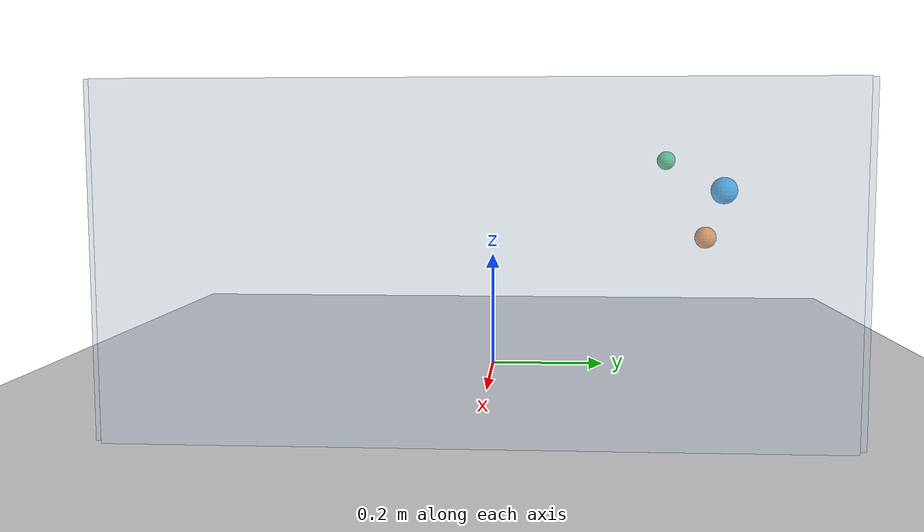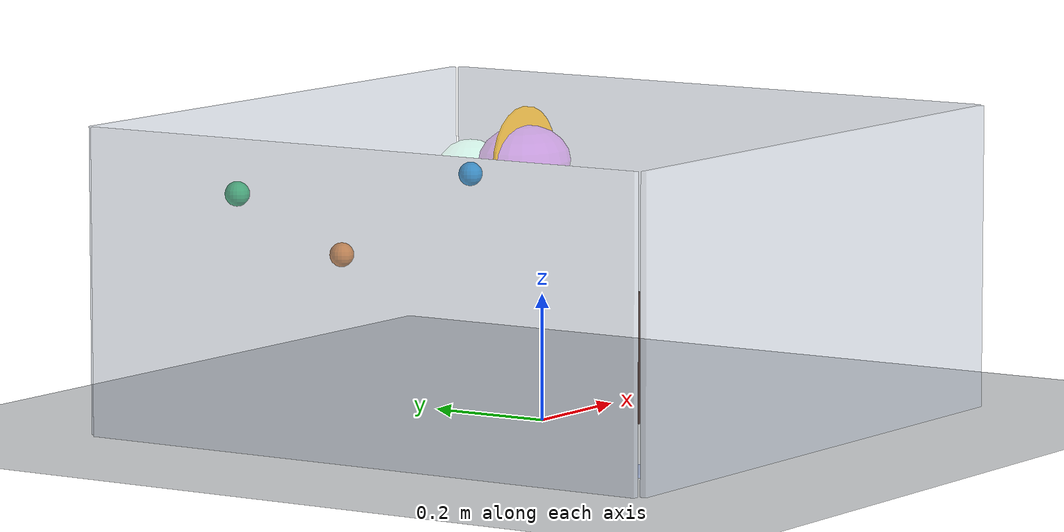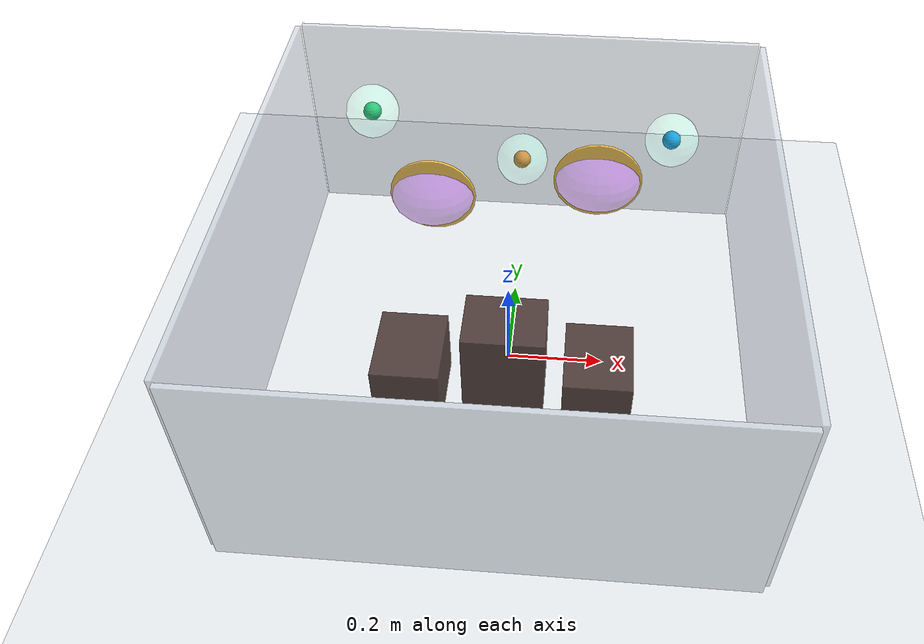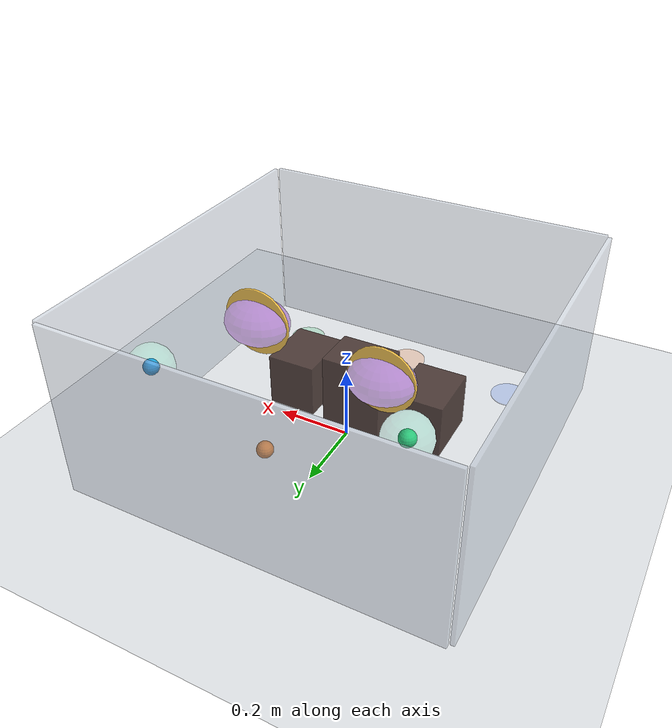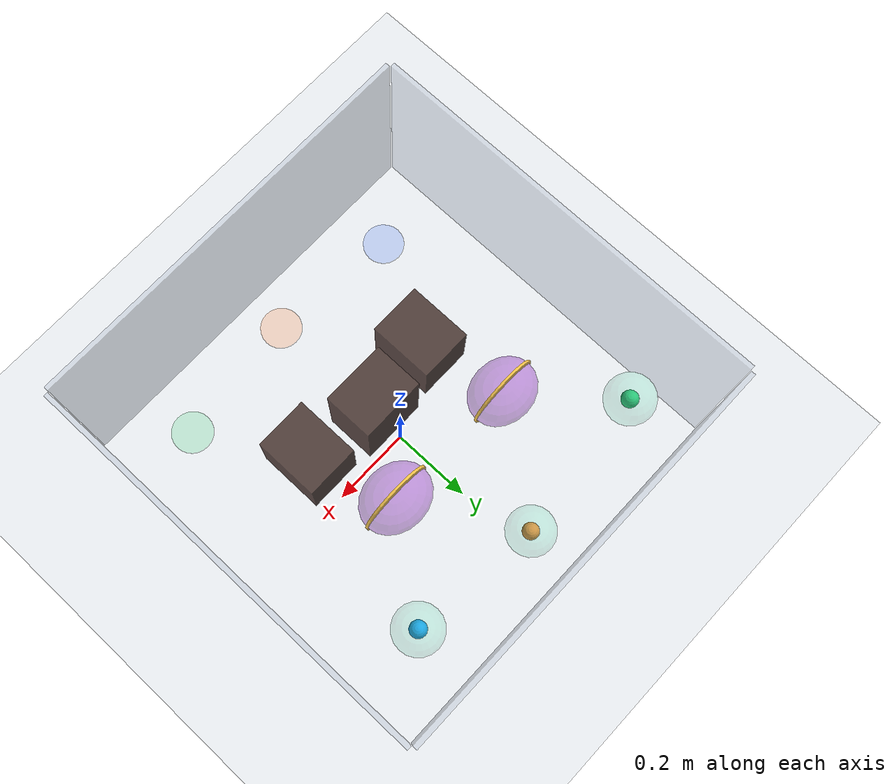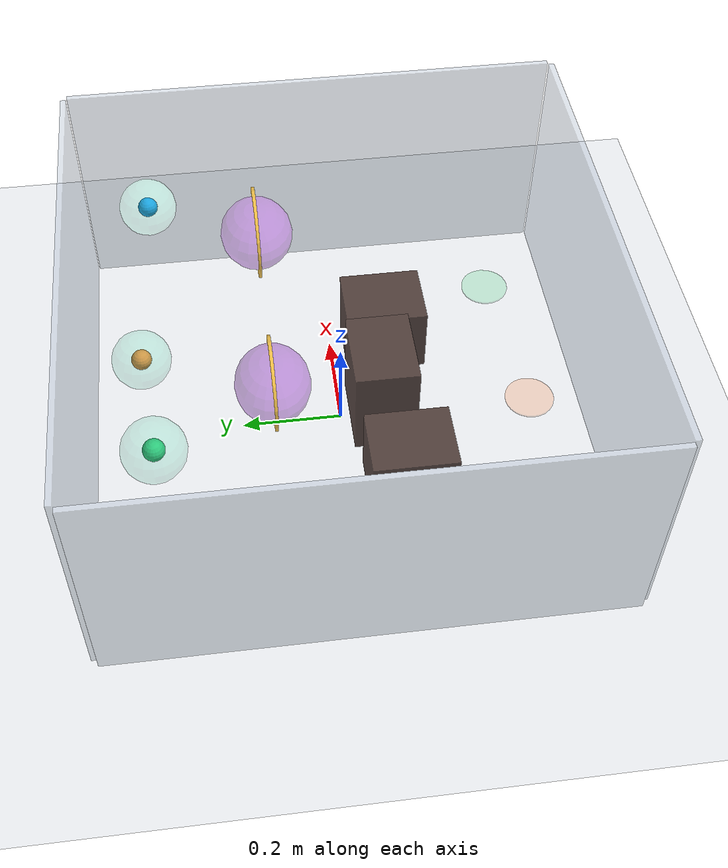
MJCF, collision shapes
<mujoco model="crazyflies3_full_3d">
  <compiler angle="radian" autolimits="true" inertiafromgeom="false" meshdir="../../external/mujoco_menagerie/bitcraze_crazyflie_2/assets"/>

  <option timestep="0.025" gravity="0 0 -9.81" integrator="Euler" density="1.225" viscosity="1.8e-5"/>
  <statistic center="0 0 0.27" extent="1.05"/>

  <default>
    <geom contype="0" conaffinity="0"/>
    <site type="sphere" size="0.035"/>
    <default class="cf2">
      <default class="visual">
        <geom group="2" type="mesh" contype="0" conaffinity="0"/>
      </default>
      <default class="collision">
        <geom group="3" type="mesh"/>
      </default>
      <site group="5"/>
      <motor ctrllimited="true"/>
    </default>
  </default>

  <asset>
    <texture name="sky" type="skybox" builtin="flat" rgb1="1 1 1" width="64" height="64"/>
    <texture name="floor_tex" type="2d" builtin="checker" width="512" height="512"
      rgb1="0.965 0.970 0.978" rgb2="0.890 0.910 0.930"/>
    <material name="floor_mat" texture="floor_tex" texrepeat="7 7" texuniform="true" reflectance="0.06"/>
    <material name="wall_mat" rgba="0.72 0.77 0.84 0.42" specular="0.12" shininess="0.25"/>
    <material name="ground_obstacle_mat" rgba="0.28 0.20 0.18 0.88" specular="0.10" shininess="0.22"/>
    <material name="air_hazard_mat" rgba="0.52 0.10 0.74 0.40" specular="0.18" shininess="0.35"/>
    <material name="air_hazard_core_mat" rgba="0.54 0.08 0.74 0.78" specular="0.12" shininess="0.25"/>
    <material name="hazard_ring_mat" rgba="1.00 0.76 0.18 0.82" specular="0.16" shininess="0.24"/>
    <material name="goal1_mat" rgba="0.10 0.62 0.96 0.95" specular="0.20" shininess="0.40"/>
    <material name="goal2_mat" rgba="0.96 0.54 0.20 0.95" specular="0.20" shininess="0.40"/>
    <material name="goal3_mat" rgba="0.18 0.78 0.46 0.95" specular="0.20" shininess="0.40"/>
    <material name="goal_zone_mat" rgba="0.20 0.84 0.62 0.18"/>
    <material name="start1_mat" rgba="0.34 0.52 0.96 0.28"/>
    <material name="start2_mat" rgba="0.98 0.56 0.30 0.28"/>
    <material name="start3_mat" rgba="0.34 0.84 0.54 0.28"/>

    <material name="polished_plastic" rgba="0.631 0.659 0.678 1"/>
    <material name="polished_gold" rgba="0.969 0.878 0.6 1"/>
    <material name="medium_gloss_plastic" rgba="0.109 0.184 0.0 1"/>
    <material name="propeller_plastic" rgba="0.792 0.820 0.933 1"/>
    <material name="white" rgba="1 1 1 1"/>
    <material name="body_frame_plastic" rgba="0.102 0.102 0.102 1"/>
    <material name="burnished_chrome" rgba="0.898 0.898 0.898 1"/>

    <mesh file="cf2_0.obj"/>
    <mesh file="cf2_1.obj"/>
    <mesh file="cf2_2.obj"/>
    <mesh file="cf2_3.obj"/>
    <mesh file="cf2_4.obj"/>
    <mesh file="cf2_5.obj"/>
    <mesh file="cf2_6.obj"/>
    <mesh file="cf2_collision_0.obj"/>
    <mesh file="cf2_collision_1.obj"/>
    <mesh file="cf2_collision_2.obj"/>
    <mesh file="cf2_collision_3.obj"/>
    <mesh file="cf2_collision_4.obj"/>
    <mesh file="cf2_collision_5.obj"/>
    <mesh file="cf2_collision_6.obj"/>
    <mesh file="cf2_collision_7.obj"/>
    <mesh file="cf2_collision_8.obj"/>
    <mesh file="cf2_collision_9.obj"/>
    <mesh file="cf2_collision_10.obj"/>
    <mesh file="cf2_collision_11.obj"/>
    <mesh file="cf2_collision_12.obj"/>
    <mesh file="cf2_collision_13.obj"/>
    <mesh file="cf2_collision_14.obj"/>
    <mesh file="cf2_collision_15.obj"/>
    <mesh file="cf2_collision_16.obj"/>
    <mesh file="cf2_collision_17.obj"/>
    <mesh file="cf2_collision_18.obj"/>
    <mesh file="cf2_collision_19.obj"/>
    <mesh file="cf2_collision_20.obj"/>
    <mesh file="cf2_collision_21.obj"/>
    <mesh file="cf2_collision_22.obj"/>
    <mesh file="cf2_collision_23.obj"/>
    <mesh file="cf2_collision_24.obj"/>
    <mesh file="cf2_collision_25.obj"/>
    <mesh file="cf2_collision_26.obj"/>
    <mesh file="cf2_collision_27.obj"/>
    <mesh file="cf2_collision_28.obj"/>
    <mesh file="cf2_collision_29.obj"/>
    <mesh file="cf2_collision_30.obj"/>
    <mesh file="cf2_collision_31.obj"/>
  </asset>

  <worldbody>
    <light name="key" pos="-0.45 -0.75 1.05" diffuse="0.95 0.95 0.95" specular="0.22 0.22 0.22"/>
    <light name="fill" pos="0.60 0.75 0.75" diffuse="0.48 0.50 0.52" specular="0.06 0.06 0.06"/>

    <camera name="angled" mode="fixed" pos="0.735 -1.11 0.645" xyaxes="0.82 0.57 0 -0.34 0.49 0.80"/>
    <camera name="side" mode="fixed" pos="0 -1.23 0.435" xyaxes="1 0 0 0 0.27 0.96"/>
    <camera name="top_down" mode="fixed" pos="0 -0.0075 1.23" xyaxes="1 0 0 0 1 0"/>

    <geom name="floor" type="plane" pos="0 0 0" size="0.81 0.81 0.015" material="floor_mat"/>
    <geom name="arena_back" type="box" pos="0 0.5025 0.24" size="0.495 0.00525 0.24" material="wall_mat"/>
    <geom name="arena_front" type="box" pos="0 -0.5025 0.24" size="0.495 0.00525 0.24" material="wall_mat"/>
    <geom name="arena_left" type="box" pos="-0.5025 0 0.24" size="0.00525 0.495 0.24" material="wall_mat"/>
    <geom name="arena_right" type="box" pos="0.5025 0 0.24" size="0.00525 0.495 0.24" material="wall_mat"/>

    <geom name="ground_barrier_left" type="box" pos="-0.1875 -0.1125 0.075" size="0.0675 0.0825 0.075" material="ground_obstacle_mat"/>
    <geom name="ground_barrier_center" type="box" pos="0.0 -0.0825 0.102" size="0.0825 0.063 0.102" material="ground_obstacle_mat"/>
    <geom name="ground_barrier_right" type="box" pos="0.1875 -0.1125 0.075" size="0.0675 0.0825 0.075" material="ground_obstacle_mat"/>
    <geom name="air_hazard_left" type="ellipsoid" pos="-0.165 0.1425 0.3225" size="0.084 0.069 0.057" material="air_hazard_mat"/>
    <geom name="air_hazard_left_core" type="ellipsoid" pos="-0.165 0.1425 0.3225" size="0.051 0.042 0.036" material="air_hazard_core_mat"/>
    <geom name="air_hazard_left_ring" type="cylinder" pos="-0.165 0.1425 0.3225" size="0.087 0.0027" euler="1.5707963268 0 0" material="hazard_ring_mat"/>
    <geom name="air_hazard_right" type="ellipsoid" pos="0.165 0.1425 0.3825" size="0.084 0.069 0.057" material="air_hazard_mat"/>
    <geom name="air_hazard_right_core" type="ellipsoid" pos="0.165 0.1425 0.3825" size="0.051 0.042 0.036" material="air_hazard_core_mat"/>
    <geom name="air_hazard_right_ring" type="cylinder" pos="0.165 0.1425 0.3825" size="0.087 0.0027" euler="1.5707963268 0 0" material="hazard_ring_mat"/>

    <geom name="start_d1" type="cylinder" pos="-0.33 -0.3675 0.0021" size="0.051 0.0021" material="start1_mat"/>
    <geom name="start_d2" type="cylinder" pos="0.0 -0.3975 0.0021" size="0.051 0.0021" material="start2_mat"/>
    <geom name="start_d3" type="cylinder" pos="0.33 -0.3675 0.0021" size="0.051 0.0021" material="start3_mat"/>

    <geom name="goal_d1_zone" type="ellipsoid" pos="0.3225 0.3525 0.33" size="0.057 0.057 0.057" material="goal_zone_mat"/>
    <geom name="goal_d1_core" type="sphere" pos="0.3225 0.3525 0.33" size="0.0195" material="goal1_mat"/>
    <geom name="goal_d2_zone" type="ellipsoid" pos="0.0 0.3825 0.2325" size="0.057 0.057 0.057" material="goal_zone_mat"/>
    <geom name="goal_d2_core" type="sphere" pos="0.0 0.3825 0.2325" size="0.0195" material="goal2_mat"/>
    <geom name="goal_d3_zone" type="ellipsoid" pos="-0.3225 0.3525 0.3675" size="0.057 0.057 0.057" material="goal_zone_mat"/>
    <geom name="goal_d3_core" type="sphere" pos="-0.3225 0.3525 0.3675" size="0.0195" material="goal3_mat"/>

    <body name="cf1" pos="-0.33 -0.3675 0.105" childclass="cf2">
      <freejoint name="cf1_free"/>
      <inertial pos="0 0 0" mass="0.027" diaginertia="2.3951e-5 2.3951e-5 3.2347e-5"/>
      <geom mesh="cf2_0" material="propeller_plastic" class="visual"/>
      <geom mesh="cf2_1" material="medium_gloss_plastic" class="visual"/>
      <geom mesh="cf2_2" material="polished_gold" class="visual"/>
      <geom mesh="cf2_3" material="polished_plastic" class="visual"/>
      <geom mesh="cf2_4" material="burnished_chrome" class="visual"/>
      <geom mesh="cf2_5" material="body_frame_plastic" class="visual"/>
      <geom mesh="cf2_6" material="white" class="visual"/>
      <geom mesh="cf2_collision_0" class="collision"/><geom mesh="cf2_collision_1" class="collision"/><geom mesh="cf2_collision_2" class="collision"/><geom mesh="cf2_collision_3" class="collision"/>
      <geom mesh="cf2_collision_4" class="collision"/><geom mesh="cf2_collision_5" class="collision"/><geom mesh="cf2_collision_6" class="collision"/><geom mesh="cf2_collision_7" class="collision"/>
      <geom mesh="cf2_collision_8" class="collision"/><geom mesh="cf2_collision_9" class="collision"/><geom mesh="cf2_collision_10" class="collision"/><geom mesh="cf2_collision_11" class="collision"/>
      <geom mesh="cf2_collision_12" class="collision"/><geom mesh="cf2_collision_13" class="collision"/><geom mesh="cf2_collision_14" class="collision"/><geom mesh="cf2_collision_15" class="collision"/>
      <geom mesh="cf2_collision_16" class="collision"/><geom mesh="cf2_collision_17" class="collision"/><geom mesh="cf2_collision_18" class="collision"/><geom mesh="cf2_collision_19" class="collision"/>
      <geom mesh="cf2_collision_20" class="collision"/><geom mesh="cf2_collision_21" class="collision"/><geom mesh="cf2_collision_22" class="collision"/><geom mesh="cf2_collision_23" class="collision"/>
      <geom mesh="cf2_collision_24" class="collision"/><geom mesh="cf2_collision_25" class="collision"/><geom mesh="cf2_collision_26" class="collision"/><geom mesh="cf2_collision_27" class="collision"/>
      <geom mesh="cf2_collision_28" class="collision"/><geom mesh="cf2_collision_29" class="collision"/><geom mesh="cf2_collision_30" class="collision"/><geom mesh="cf2_collision_31" class="collision"/>
      <site name="cf1_imu"/>
      <site name="cf1_fl_thruster" pos="-0.0325 0.0325 0.005"/>
      <site name="cf1_fr_thruster" pos="0.0325 0.0325 0.005"/>
      <site name="cf1_rr_thruster" pos="0.0325 -0.0325 0.005"/>
      <site name="cf1_rl_thruster" pos="-0.0325 -0.0325 0.005"/>
    </body>

    <body name="cf2" pos="0 -0.3975 0.117" childclass="cf2">
      <freejoint name="cf2_free"/>
      <inertial pos="0 0 0" mass="0.027" diaginertia="2.3951e-5 2.3951e-5 3.2347e-5"/>
      <geom mesh="cf2_0" material="propeller_plastic" class="visual"/>
      <geom mesh="cf2_1" material="medium_gloss_plastic" class="visual"/>
      <geom mesh="cf2_2" material="polished_gold" class="visual"/>
      <geom mesh="cf2_3" material="polished_plastic" class="visual"/>
      <geom mesh="cf2_4" material="burnished_chrome" class="visual"/>
      <geom mesh="cf2_5" material="body_frame_plastic" class="visual"/>
      <geom mesh="cf2_6" material="white" class="visual"/>
      <geom mesh="cf2_collision_0" class="collision"/><geom mesh="cf2_collision_1" class="collision"/><geom mesh="cf2_collision_2" class="collision"/><geom mesh="cf2_collision_3" class="collision"/>
      <geom mesh="cf2_collision_4" class="collision"/><geom mesh="cf2_collision_5" class="collision"/><geom mesh="cf2_collision_6" class="collision"/><geom mesh="cf2_collision_7" class="collision"/>
      <geom mesh="cf2_collision_8" class="collision"/><geom mesh="cf2_collision_9" class="collision"/><geom mesh="cf2_collision_10" class="collision"/><geom mesh="cf2_collision_11" class="collision"/>
      <geom mesh="cf2_collision_12" class="collision"/><geom mesh="cf2_collision_13" class="collision"/><geom mesh="cf2_collision_14" class="collision"/><geom mesh="cf2_collision_15" class="collision"/>
      <geom mesh="cf2_collision_16" class="collision"/><geom mesh="cf2_collision_17" class="collision"/><geom mesh="cf2_collision_18" class="collision"/><geom mesh="cf2_collision_19" class="collision"/>
      <geom mesh="cf2_collision_20" class="collision"/><geom mesh="cf2_collision_21" class="collision"/><geom mesh="cf2_collision_22" class="collision"/><geom mesh="cf2_collision_23" class="collision"/>
      <geom mesh="cf2_collision_24" class="collision"/><geom mesh="cf2_collision_25" class="collision"/><geom mesh="cf2_collision_26" class="collision"/><geom mesh="cf2_collision_27" class="collision"/>
      <geom mesh="cf2_collision_28" class="collision"/><geom mesh="cf2_collision_29" class="collision"/><geom mesh="cf2_collision_30" class="collision"/><geom mesh="cf2_collision_31" class="collision"/>
      <site name="cf2_imu"/>
      <site name="cf2_fl_thruster" pos="-0.0325 0.0325 0.005"/>
      <site name="cf2_fr_thruster" pos="0.0325 0.0325 0.005"/>
      <site name="cf2_rr_thruster" pos="0.0325 -0.0325 0.005"/>
      <site name="cf2_rl_thruster" pos="-0.0325 -0.0325 0.005"/>
    </body>

    <body name="cf3" pos="0.33 -0.3675 0.108" childclass="cf2">
      <freejoint name="cf3_free"/>
      <inertial pos="0 0 0" mass="0.027" diaginertia="2.3951e-5 2.3951e-5 3.2347e-5"/>
      <geom mesh="cf2_0" material="propeller_plastic" class="visual"/>
      <geom mesh="cf2_1" material="medium_gloss_plastic" class="visual"/>
      <geom mesh="cf2_2" material="polished_gold" class="visual"/>
      <geom mesh="cf2_3" material="polished_plastic" class="visual"/>
      <geom mesh="cf2_4" material="burnished_chrome" class="visual"/>
      <geom mesh="cf2_5" material="body_frame_plastic" class="visual"/>
      <geom mesh="cf2_6" material="white" class="visual"/>
      <geom mesh="cf2_collision_0" class="collision"/><geom mesh="cf2_collision_1" class="collision"/><geom mesh="cf2_collision_2" class="collision"/><geom mesh="cf2_collision_3" class="collision"/>
      <geom mesh="cf2_collision_4" class="collision"/><geom mesh="cf2_collision_5" class="collision"/><geom mesh="cf2_collision_6" class="collision"/><geom mesh="cf2_collision_7" class="collision"/>
      <geom mesh="cf2_collision_8" class="collision"/><geom mesh="cf2_collision_9" class="collision"/><geom mesh="cf2_collision_10" class="collision"/><geom mesh="cf2_collision_11" class="collision"/>
      <geom mesh="cf2_collision_12" class="collision"/><geom mesh="cf2_collision_13" class="collision"/><geom mesh="cf2_collision_14" class="collision"/><geom mesh="cf2_collision_15" class="collision"/>
      <geom mesh="cf2_collision_16" class="collision"/><geom mesh="cf2_collision_17" class="collision"/><geom mesh="cf2_collision_18" class="collision"/><geom mesh="cf2_collision_19" class="collision"/>
      <geom mesh="cf2_collision_20" class="collision"/><geom mesh="cf2_collision_21" class="collision"/><geom mesh="cf2_collision_22" class="collision"/><geom mesh="cf2_collision_23" class="collision"/>
      <geom mesh="cf2_collision_24" class="collision"/><geom mesh="cf2_collision_25" class="collision"/><geom mesh="cf2_collision_26" class="collision"/><geom mesh="cf2_collision_27" class="collision"/>
      <geom mesh="cf2_collision_28" class="collision"/><geom mesh="cf2_collision_29" class="collision"/><geom mesh="cf2_collision_30" class="collision"/><geom mesh="cf2_collision_31" class="collision"/>
      <site name="cf3_imu"/>
      <site name="cf3_fl_thruster" pos="-0.0325 0.0325 0.005"/>
      <site name="cf3_fr_thruster" pos="0.0325 0.0325 0.005"/>
      <site name="cf3_rr_thruster" pos="0.0325 -0.0325 0.005"/>
      <site name="cf3_rl_thruster" pos="-0.0325 -0.0325 0.005"/>
    </body>
  </worldbody>

  <actuator>
    <motor class="cf2" ctrlrange="0 0.0875" gear="0 0 1 0 0 0.000057" site="cf1_fl_thruster" name="cf1_front_left"/>
    <motor class="cf2" ctrlrange="0 0.0875" gear="0 0 1 0 0 -0.000057" site="cf1_fr_thruster" name="cf1_front_right"/>
    <motor class="cf2" ctrlrange="0 0.0875" gear="0 0 1 0 0 0.000057" site="cf1_rr_thruster" name="cf1_rear_right"/>
    <motor class="cf2" ctrlrange="0 0.0875" gear="0 0 1 0 0 -0.000057" site="cf1_rl_thruster" name="cf1_rear_left"/>

    <motor class="cf2" ctrlrange="0 0.0875" gear="0 0 1 0 0 0.000057" site="cf2_fl_thruster" name="cf2_front_left"/>
    <motor class="cf2" ctrlrange="0 0.0875" gear="0 0 1 0 0 -0.000057" site="cf2_fr_thruster" name="cf2_front_right"/>
    <motor class="cf2" ctrlrange="0 0.0875" gear="0 0 1 0 0 0.000057" site="cf2_rr_thruster" name="cf2_rear_right"/>
    <motor class="cf2" ctrlrange="0 0.0875" gear="0 0 1 0 0 -0.000057" site="cf2_rl_thruster" name="cf2_rear_left"/>

    <motor class="cf2" ctrlrange="0 0.0875" gear="0 0 1 0 0 0.000057" site="cf3_fl_thruster" name="cf3_front_left"/>
    <motor class="cf2" ctrlrange="0 0.0875" gear="0 0 1 0 0 -0.000057" site="cf3_fr_thruster" name="cf3_front_right"/>
    <motor class="cf2" ctrlrange="0 0.0875" gear="0 0 1 0 0 0.000057" site="cf3_rr_thruster" name="cf3_rear_right"/>
    <motor class="cf2" ctrlrange="0 0.0875" gear="0 0 1 0 0 -0.000057" site="cf3_rl_thruster" name="cf3_rear_left"/>
  </actuator>
</mujoco>
